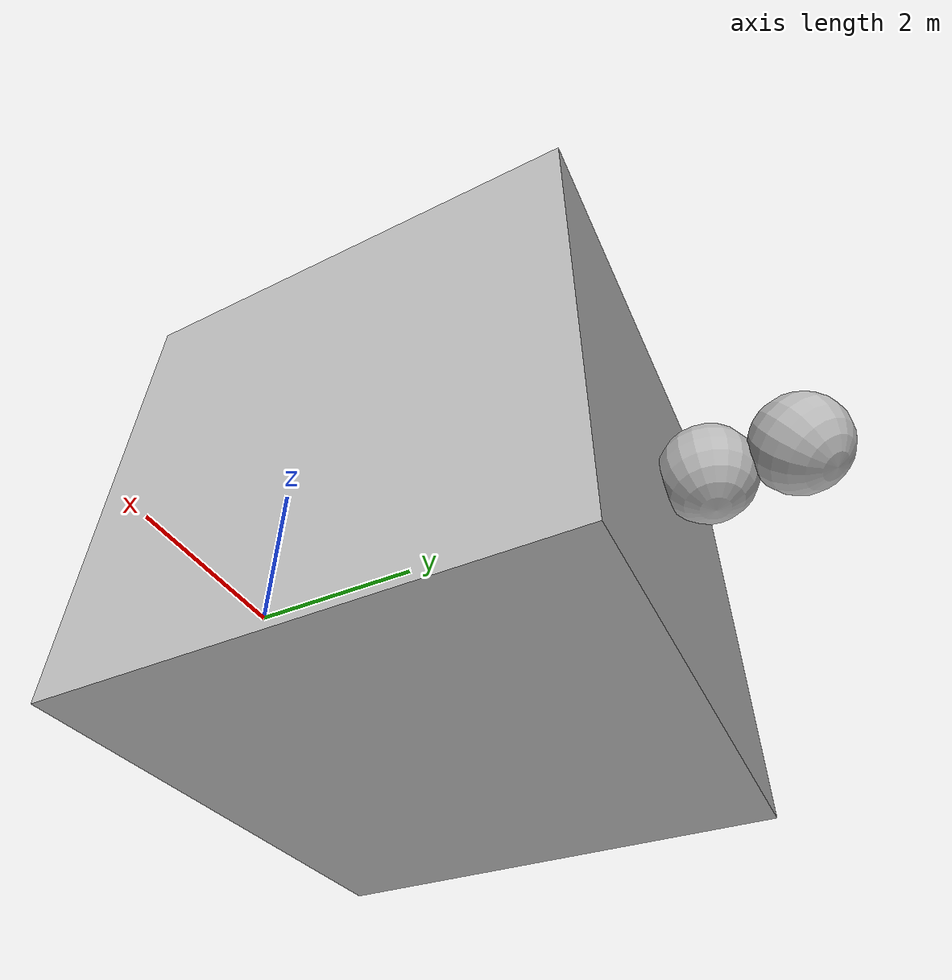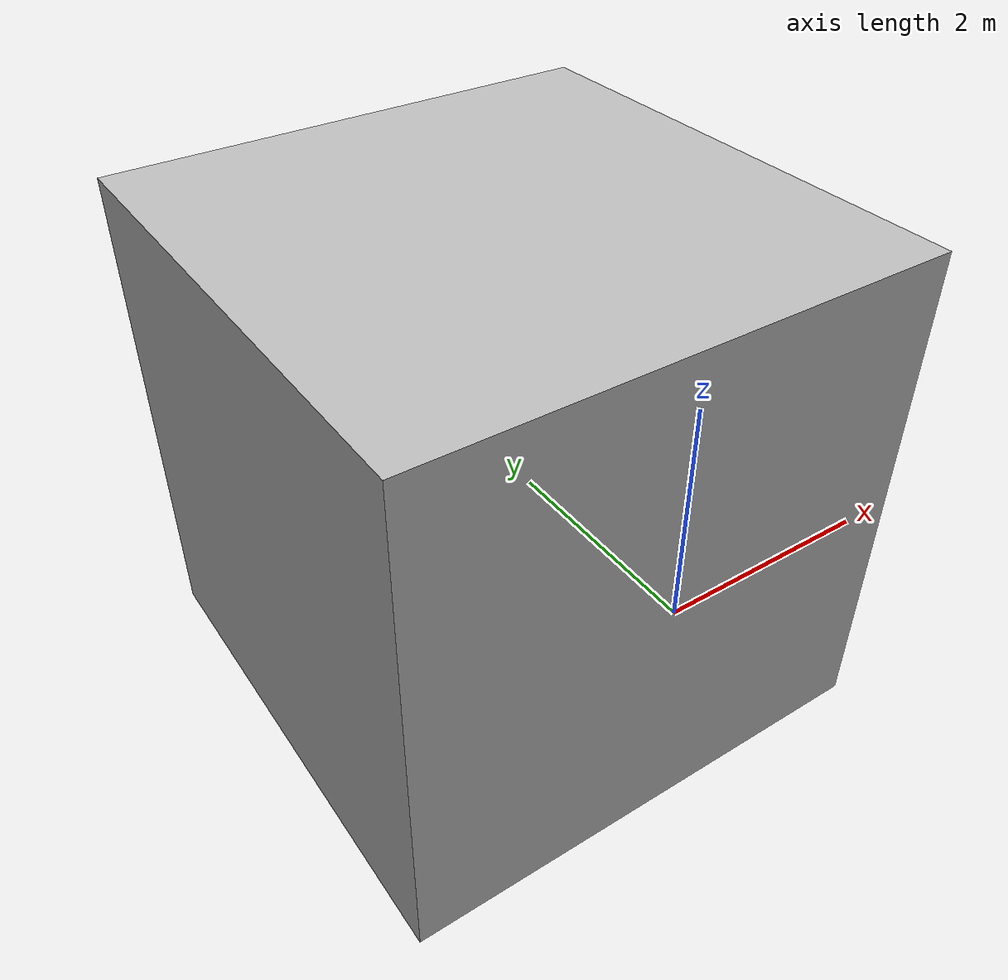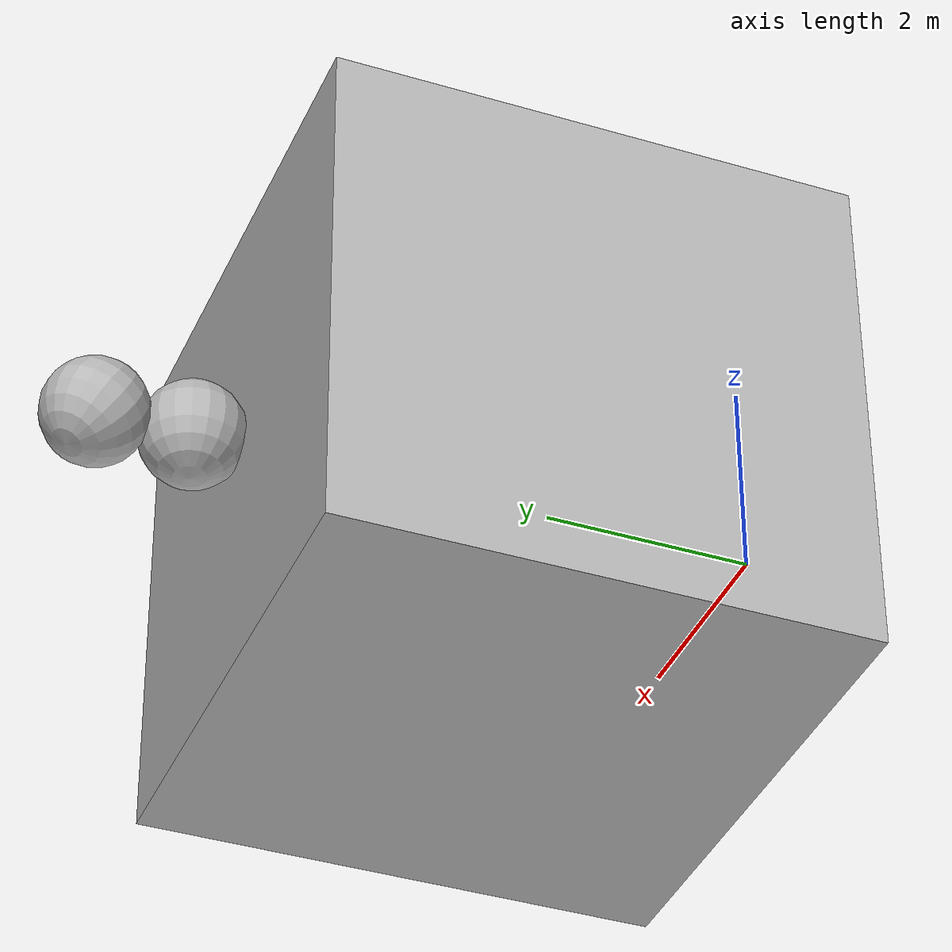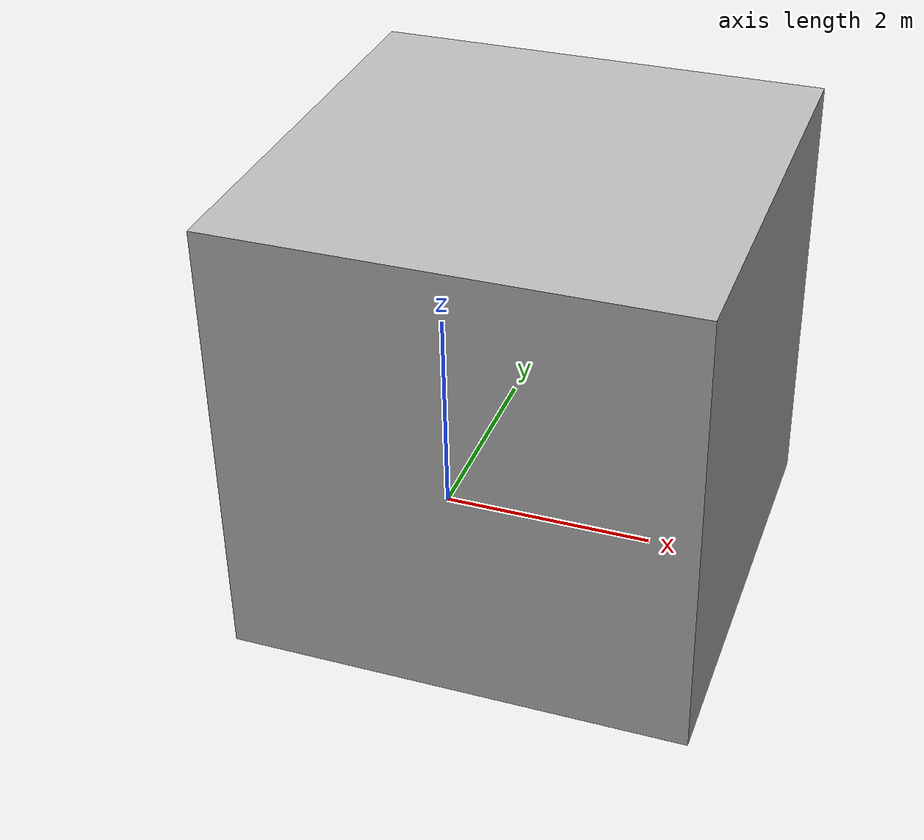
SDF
<?xml version="1.0"?>
<sdf version="1.6">
  <model name="simple_collision_world">
    <pose>0 0 0 0 0 0</pose>
    <link name="large_box">
      <pose>0 2.5 0 0 0 0</pose>
      <visual name="box">
        <geometry>
          <box>
            <size>5.0 5.0 5.0</size>
          </box>
        </geometry>
      </visual>
      <collision name="box">
        <geometry>
          <box>
            <size>5.0 5.0 5.0</size>
          </box>
        </geometry>
      </collision>
    </link>
    <link name="small_sphere_1">
      <pose>0 5.4 0 0 0 0</pose>
      <visual name="box">
        <geometry>
          <sphere>
            <radius>0.5</radius>
          </sphere>
        </geometry>
      </visual>
      <collision name="sphere">
        <geometry>
          <sphere>
            <radius>0.5</radius>
          </sphere>
        </geometry>
      </collision>
    </link>
    <link name="small_sphere_2">
      <pose>0 6.3 0 0.5 0 0</pose>
      <visual name="box">
        <geometry>
          <sphere>
            <radius>0.5</radius>
          </sphere>
        </geometry>
      </visual>
      <collision name="sphere">
        <geometry>
          <sphere>
            <radius>0.5</radius>
          </sphere>
        </geometry>
      </collision>
    </link>
    <joint name="sphere_joint" type="revolute">
      <parent>small_sphere_1</parent>
      <child>small_sphere_2</child>
      <pose>0 0.5 0 0 0 0</pose>
      <axis>
        <xyz>0 1 0</xyz>
      </axis>
    </joint>
  </model>
</sdf>
